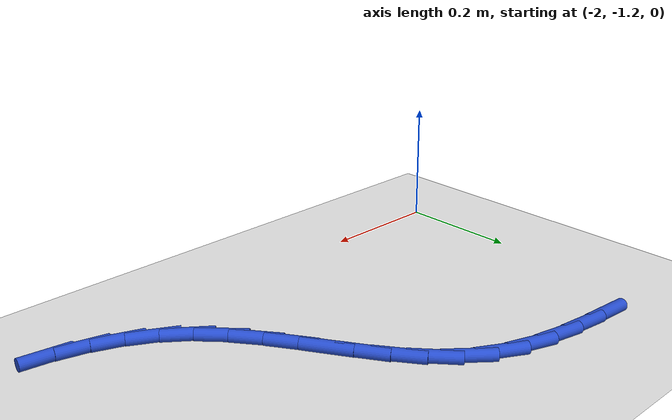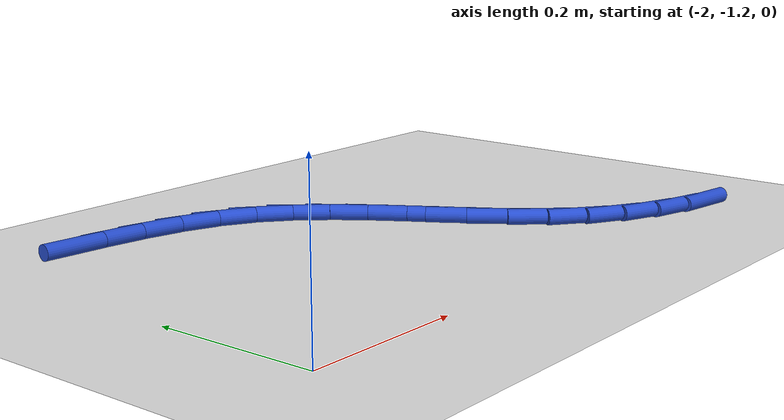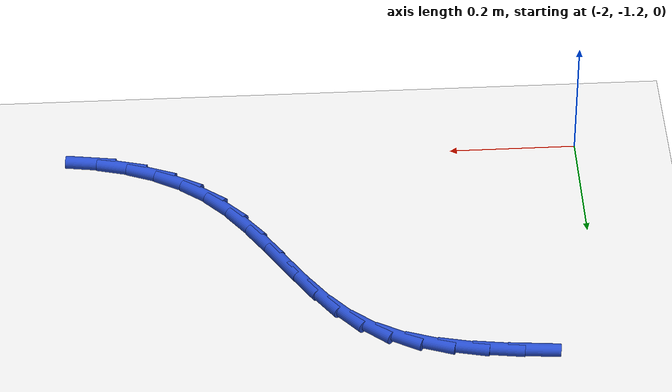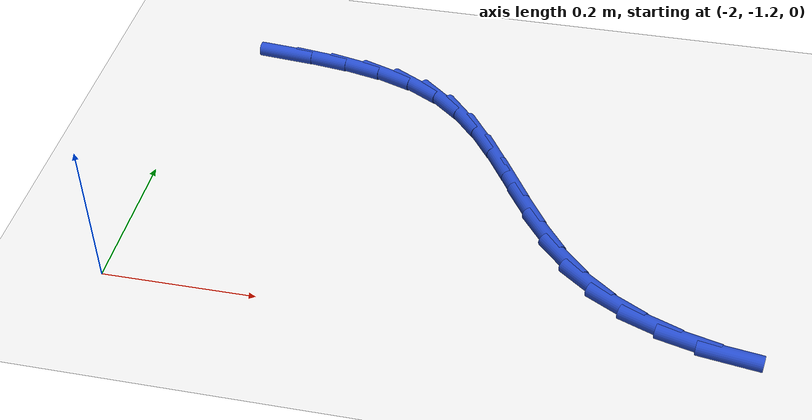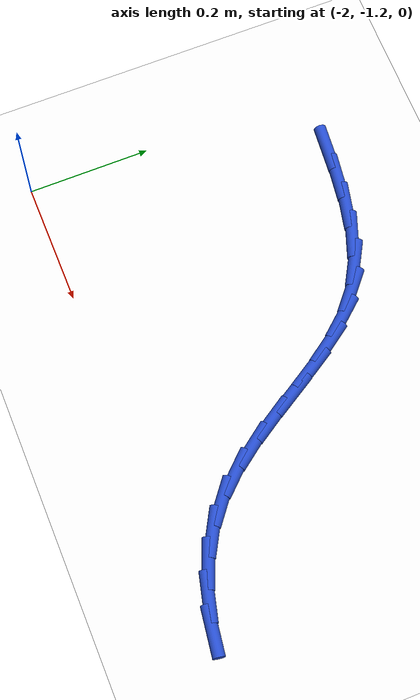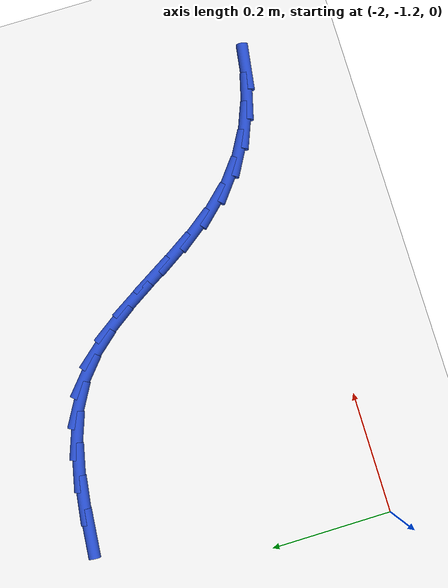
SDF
<sdf version="1.6">
 <world name="default">
  <model name="ground_plane">
   <static>1</static>
   <link name="link">
    <collision name="collision">
     <geometry><plane><normal>0 0 1</normal><size>100 100</size></plane></geometry>
     <surface><friction><ode><mu>100</mu><mu2>50</mu2></ode></friction></surface>
    </collision>
    <visual name="visual">
     <cast_shadows>0</cast_shadows>
     <geometry><plane><normal>0 0 1</normal><size>100 100</size></plane></geometry>
     <material>
      <script><uri>file://media/materials/scripts/gazebo.material</uri><name>Gazebo/WhiteGlow</name></script>
     </material>
    </visual>
   </link>
  </model>
  <model name="line">
   <link name="link_86">
    <pose>-1.8901340078555378 -0.7257417217667583 0.01 0 1.57 -0.08956753166701856</pose>
    <collision name="collision">
     <geometry><cylinder><radius>0.01</radius><length>0.08</length></cylinder></geometry>
    </collision>
    <visual name="visual">
     <material>
      <script><name>Gazebo/Blue</name><uri>file://media/materials/scripts/gazebo.material</uri></script>
     </material>
     <geometry><cylinder><radius>0.01</radius><length>0.08</length></cylinder></geometry>
    </visual>
   </link>
   <link name="link_87">
    <pose>-1.8364373552156819 -0.7305641008973409 0.01 0 1.57 -0.1375230017352444</pose>
    <collision name="collision">
     <geometry><cylinder><radius>0.01</radius><length>0.08</length></cylinder></geometry>
    </collision>
    <visual name="visual">
     <material>
      <script><name>Gazebo/Blue</name><uri>file://media/materials/scripts/gazebo.material</uri></script>
     </material>
     <geometry><cylinder><radius>0.01</radius><length>0.08</length></cylinder></geometry>
    </visual>
   </link>
   <link name="link_88">
    <pose>-1.7840124523045437 -0.7378195282930449 0.01 0 1.57 -0.21986850662432864</pose>
    <collision name="collision">
     <geometry><cylinder><radius>0.01</radius><length>0.08</length></cylinder></geometry>
    </collision>
    <visual name="visual">
     <material>
      <script><name>Gazebo/Blue</name><uri>file://media/materials/scripts/gazebo.material</uri></script>
     </material>
     <geometry><cylinder><radius>0.01</radius><length>0.08</length></cylinder></geometry>
    </visual>
   </link>
   <link name="link_89">
    <pose>-1.7340425937700628 -0.7489868600769742 0.01 0 1.57 -0.343236803186289</pose>
    <collision name="collision">
     <geometry><cylinder><radius>0.01</radius><length>0.08</length></cylinder></geometry>
    </collision>
    <visual name="visual">
     <material>
      <script><name>Gazebo/Blue</name><uri>file://media/materials/scripts/gazebo.material</uri></script>
     </material>
     <geometry><cylinder><radius>0.01</radius><length>0.08</length></cylinder></geometry>
    </visual>
   </link>
   <link name="link_90">
    <pose>-1.6877110742601817 -0.7655449523722331 0.01 0 1.57 -0.5137502279021221</pose>
    <collision name="collision">
     <geometry><cylinder><radius>0.01</radius><length>0.08</length></cylinder></geometry>
    </collision>
    <visual name="visual">
     <material>
      <script><name>Gazebo/Blue</name><uri>file://media/materials/scripts/gazebo.material</uri></script>
     </material>
     <geometry><cylinder><radius>0.01</radius><length>0.08</length></cylinder></geometry>
    </visual>
   </link>
   <link name="link_91">
    <pose>-1.6461990546407372 -0.788969881850291 0.01 0 1.57 -0.7070441552987657</pose>
    <collision name="collision">
     <geometry><cylinder><radius>0.01</radius><length>0.08</length></cylinder></geometry>
    </collision>
    <visual name="visual">
     <material>
      <script><name>Gazebo/Blue</name><uri>file://media/materials/scripts/gazebo.material</uri></script>
     </material>
     <geometry><cylinder><radius>0.01</radius><length>0.08</length></cylinder></geometry>
    </visual>
   </link>
   <link name="link_92">
    <pose>-1.6100261904590203 -0.819876052364025 0.01 0 1.57 -0.8581318931787117</pose>
    <collision name="collision">
     <geometry><cylinder><radius>0.01</radius><length>0.08</length></cylinder></geometry>
    </collision>
    <visual name="visual">
     <material>
      <script><name>Gazebo/Blue</name><uri>file://media/materials/scripts/gazebo.material</uri></script>
     </material>
     <geometry><cylinder><radius>0.01</radius><length>0.08</length></cylinder></geometry>
    </visual>
   </link>
   <link name="link_93">
    <pose>-1.5781172337050944 -0.856800356059304 0.01 0 1.57 -0.9578720315102975</pose>
    <collision name="collision">
     <geometry><cylinder><radius>0.01</radius><length>0.08</length></cylinder></geometry>
    </collision>
    <visual name="visual">
     <material>
      <script><name>Gazebo/Blue</name><uri>file://media/materials/scripts/gazebo.material</uri></script>
     </material>
     <geometry><cylinder><radius>0.01</radius><length>0.08</length></cylinder></geometry>
    </visual>
   </link>
   <link name="link_94">
    <pose>-1.5491613999828466 -0.8979728768129346 0.01 0 1.57 -1.011674438812957</pose>
    <collision name="collision">
     <geometry><cylinder><radius>0.01</radius><length>0.08</length></cylinder></geometry>
    </collision>
    <visual name="visual">
     <material>
      <script><name>Gazebo/Blue</name><uri>file://media/materials/scripts/gazebo.material</uri></script>
     </material>
     <geometry><cylinder><radius>0.01</radius><length>0.08</length></cylinder></geometry>
    </visual>
   </link>
   <link name="link_95">
    <pose>-1.521847904896163 -0.9416236985017244 0.01 0 1.57 -1.0243252603507782</pose>
    <collision name="collision">
     <geometry><cylinder><radius>0.01</radius><length>0.08</length></cylinder></geometry>
    </collision>
    <visual name="visual">
     <material>
      <script><name>Gazebo/Blue</name><uri>file://media/materials/scripts/gazebo.material</uri></script>
     </material>
     <geometry><cylinder><radius>0.01</radius><length>0.08</length></cylinder></geometry>
    </visual>
   </link>
   <link name="link_96">
    <pose>-1.4948659640489312 -0.9859829050024789 0.01 0 1.57 -0.9973869449694962</pose>
    <collision name="collision">
     <geometry><cylinder><radius>0.01</radius><length>0.08</length></cylinder></geometry>
    </collision>
    <visual name="visual">
     <material>
      <script><name>Gazebo/Blue</name><uri>file://media/materials/scripts/gazebo.material</uri></script>
     </material>
     <geometry><cylinder><radius>0.01</radius><length>0.08</length></cylinder></geometry>
    </visual>
   </link>
   <link name="link_97">
    <pose>-1.4669047930450376 -1.0292805801920057 0.01 0 1.57 -0.9288546476146172</pose>
    <collision name="collision">
     <geometry><cylinder><radius>0.01</radius><length>0.08</length></cylinder></geometry>
    </collision>
    <visual name="visual">
     <material>
      <script><name>Gazebo/Blue</name><uri>file://media/materials/scripts/gazebo.material</uri></script>
     </material>
     <geometry><cylinder><radius>0.01</radius><length>0.08</length></cylinder></geometry>
    </visual>
   </link>
   <link name="link_98">
    <pose>-1.4366536074883682 -1.0697468079471115 0.01 0 1.57 -0.8142624751965559</pose>
    <collision name="collision">
     <geometry><cylinder><radius>0.01</radius><length>0.08</length></cylinder></geometry>
    </collision>
    <visual name="visual">
     <material>
      <script><name>Gazebo/Blue</name><uri>file://media/materials/scripts/gazebo.material</uri></script>
     </material>
     <geometry><cylinder><radius>0.01</radius><length>0.08</length></cylinder></geometry>
    </visual>
   </link>
   <link name="link_99">
    <pose>-1.402801626977869 -1.1056116763653023 0.01 0 1.57 -0.6608081082810057</pose>
    <collision name="collision">
     <geometry><cylinder><radius>0.01</radius><length>0.08</length></cylinder></geometry>
    </collision>
    <visual name="visual">
     <material>
      <script><name>Gazebo/Blue</name><uri>file://media/materials/scripts/gazebo.material</uri></script>
     </material>
     <geometry><cylinder><radius>0.01</radius><length>0.08</length></cylinder></geometry>
    </visual>
   </link>
   <link name="link_100">
    <pose>-1.3643877198700072 -1.13547467037774 0.01 0 1.57 -0.5098773086628348</pose>
    <collision name="collision">
     <geometry><cylinder><radius>0.01</radius><length>0.08</length></cylinder></geometry>
    </collision>
    <visual name="visual">
     <material>
      <script><name>Gazebo/Blue</name><uri>file://media/materials/scripts/gazebo.material</uri></script>
     </material>
     <geometry><cylinder><radius>0.01</radius><length>0.08</length></cylinder></geometry>
    </visual>
   </link>
   <link name="link_101">
    <pose>-1.3217559922607054 -1.1593142321626821 0.01 0 1.57 -0.3736942862868321</pose>
    <collision name="collision">
     <geometry><cylinder><radius>0.01</radius><length>0.08</length></cylinder></geometry>
    </collision>
    <visual name="visual">
     <material>
      <script><name>Gazebo/Blue</name><uri>file://media/materials/scripts/gazebo.material</uri></script>
     </material>
     <geometry><cylinder><radius>0.01</radius><length>0.08</length></cylinder></geometry>
    </visual>
   </link>
   <link name="link_102">
    <pose>-1.275555058830494 -1.177430511053225 0.01 0 1.57 -0.2528715230124335</pose>
    <collision name="collision">
     <geometry><cylinder><radius>0.01</radius><length>0.08</length></cylinder></geometry>
    </collision>
    <visual name="visual">
     <material>
      <script><name>Gazebo/Blue</name><uri>file://media/materials/scripts/gazebo.material</uri></script>
     </material>
     <geometry><cylinder><radius>0.01</radius><length>0.08</length></cylinder></geometry>
    </visual>
   </link>
   <link name="link_103">
    <pose>-1.226433534259901 -1.190123656382464 0.01 0 1.57 -0.14624638570181508</pose>
    <collision name="collision">
     <geometry><cylinder><radius>0.01</radius><length>0.08</length></cylinder></geometry>
    </collision>
    <visual name="visual">
     <material>
      <script><name>Gazebo/Blue</name><uri>file://media/materials/scripts/gazebo.material</uri></script>
     </material>
     <geometry><cylinder><radius>0.01</radius><length>0.08</length></cylinder></geometry>
    </visual>
   </link>
  </model>
 </world>
</sdf>
